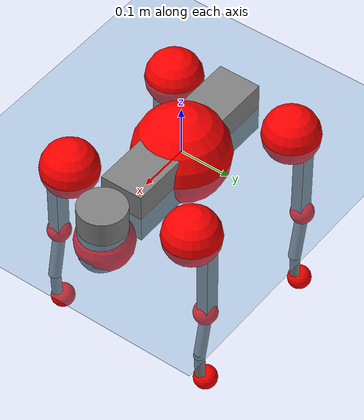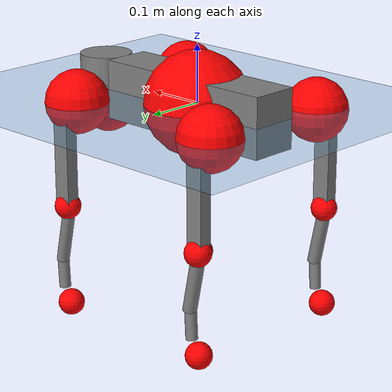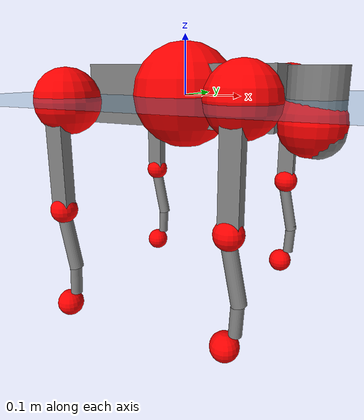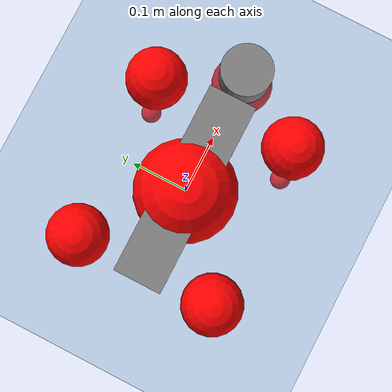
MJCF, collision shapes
<mujoco model="go2">
  <compiler angle="radian" assetdir="assets" balanceinertia="true" inertiafromgeom="false"/>

  <option timestep="0.005" density="1.2" viscosity="2e-05"/>

  <size nkey="1"/>

  <visual>
    <quality shadowsize="8192"/>
    <map shadowclip="0.5"/>
  </visual>

  <default>
    <default class="/">
      <geom contype="0" conaffinity="0" group="1" solref="-1000 -80"/>
      <site size="0.01 0.005 0.005" group="5"/>
      <general forcelimited="true" biastype="affine" gainprm="20" biasprm="0 -20 -0.5"/>
      <default class="go2">
        <joint armature="0.01" damping="0.01" frictionloss="0.2"/>
        <geom condim="1" margin="0.001"/>
        <default class="visual">
          <geom type="mesh" group="2"/>
        </default>
        <default class="collision">
          <geom group="3"/>
          <default class="foot">
            <geom size="0.022 0 0" condim="6" priority="1" friction="0.8 0.02 0.01" solimp="0.015 1 0.022"/>
          </default>
        </default>
        <default class="reward_collision_sphere">
          <geom group="5" rgba="1 0 0 1"/>
        </default>
      </default>
    </default>
  </default>

  <asset>
    <texture type="skybox" colorspace="auto" name="//unnamed_texture_0" builtin="gradient" rgb1="0.95 0.95 0.95" rgb2="0.95 0.95 0.95" width="100" height="600"/>
    <texture type="2d" colorspace="auto" name="texplane" builtin="checker" rgb1="0.345 0.575 0.748" rgb2="0.345 0.575 0.748" markrgb="1 1 1" width="512" height="512"/>
    <material name="MatPlane" class="/" texture="texplane" texuniform="true" texrepeat="2 2" specular="0.9"/>
    <material name="metal" class="/" rgba="0.9 0.95 0.95 1"/>
    <material name="black" class="/" rgba="0 0 0 1"/>
    <material name="white" class="/"/>
    <material name="gray" class="/" rgba="0.671705 0.692426 0.77427 1"/>
    <mesh name="base_0" class="/" file="base_0.obj"/>
    <mesh name="base_1" class="/" file="base_1.obj"/>
    <mesh name="base_2" class="/" file="base_2.obj"/>
    <mesh name="base_3" class="/" file="base_3.obj"/>
    <mesh name="base_4" class="/" file="base_4.obj"/>
    <mesh name="hip_0" class="/" file="hip_0.obj"/>
    <mesh name="hip_1" class="/" file="hip_1.obj"/>
    <mesh name="thigh_0" class="/" file="thigh_0.obj"/>
    <mesh name="thigh_1" class="/" file="thigh_1.obj"/>
    <mesh name="thigh_mirror_0" class="/" file="thigh_mirror_0.obj"/>
    <mesh name="thigh_mirror_1" class="/" file="thigh_mirror_1.obj"/>
    <mesh name="calf_0" class="/" file="calf_0.obj"/>
    <mesh name="calf_1" class="/" file="calf_1.obj"/>
    <mesh name="calf_mirror_0" class="/" file="calf_mirror_0.obj"/>
    <mesh name="calf_mirror_1" class="/" file="calf_mirror_1.obj"/>
    <mesh name="foot" class="/" file="foot.obj"/>
  </asset>

  <worldbody>
    <geom name="floor" class="/" size="100 100 0.125" type="plane" group="0" material="MatPlane"/>
    <light name="toplight_shadow" class="/" pos="0 0 5" dir="0.0990148 0.0990148 -0.990148" type="directional" ambient="0.04 0.04 0.04" diffuse="0.55 0.55 0.55" specular="0.12 0.12 0.12"/>
    <light name="toplight_fill" class="/" pos="0 0 5" dir="0.0990148 0.0990148 -0.990148" type="directional" castshadow="false" ambient="0.04 0.04 0.04" diffuse="0.3 0.3 0.3" specular="0.08 0.08 0.08"/>
    <body name="trunk" childclass="go2" pos="-0.000408182 0.000360783 -0.000442899" quat="1 -0.000242664 0.000272991 -0.000392783">
      <inertial pos="0.0155458 0.0017425 -0.00432745" quat="-0.00483823 0.715424 0.00212845 0.69867" mass="4.87915" diaginertia="0.0295315 0.160207 0.0090325"/>
      <joint name="//unnamed_joint_0" type="free" armature="0" damping="0" frictionloss="0"/>
      <geom name="//unnamed_geom_1" class="visual" material="black" mesh="base_0"/>
      <geom name="//unnamed_geom_2" class="visual" material="black" mesh="base_1"/>
      <geom name="//unnamed_geom_3" class="visual" material="black" mesh="base_2"/>
      <geom name="//unnamed_geom_4" class="visual" material="white" mesh="base_3"/>
      <geom name="//unnamed_geom_5" class="visual" material="gray" mesh="base_4"/>
      <geom name="trunk_1" class="collision" size="0.16918 0.0420477 0.0512668" type="box"/>
      <geom name="trunk_2" class="collision" size="0.0449708 0.0404738" pos="0.220003 0 0.0082139" type="cylinder"/>
      <geom name="trunk_3" class="collision" size="0.0422726" pos="0.226179 0 -0.0492834"/>
      <geom name="//unnamed_geom_9" class="reward_collision_sphere" size="0.0899417"/>
      <geom name="//unnamed_geom_10" class="reward_collision_sphere" size="0.053965" pos="0.216143 0 -0.0369626"/>
      <site name="imu" pos="-0.0171988 0.0141147 0.0234657" size="0.00899417"/>
      <camera name="track" pos="0 -2.20984 0" quat="0.707107 0.707107 0 0" mode="trackcom"/>
      <camera name="ego_camera" pos="0.240845 0 0.0369626" quat="-0.5 -0.5 0.5 0.5"/>
      <body name="FL_hip" pos="0.147874 0.0551349 0.00128029" quat="1 5.42864e-05 0.00043076 -0.00011447">
        <inertial pos="-0.00562824 0.00156154 4.99365e-05" quat="0.496062 0.501835 0.505058 0.496992" mass="0.476529" diaginertia="0.000240969 0.000927243 0.00017301"/>
        <joint name="FL_hip_joint" pos="0 0 0" axis="1 -1.30347e-05 0.000650022" range="-1.05668 1.10595" armature="0.00907425" damping="0" frictionloss="0.20532"/>
        <geom name="//unnamed_geom_11" class="visual" material="metal" mesh="hip_0"/>
        <geom name="//unnamed_geom_12" class="visual" material="gray" mesh="hip_1"/>
        <geom name="//unnamed_geom_13" class="collision" size="0.0413732 0.0179883" pos="0 0.0883936 0" quat="0.707107 0.707107 0 0" type="cylinder"/>
        <geom name="//unnamed_geom_14" class="reward_collision_sphere" size="0.053965" pos="0 0.0773444 0"/>
        <body name="FL_thigh" pos="-0.00257742 0.108286 0.000158445" quat="1 0.000247458 -1.44751e-05 4.88673e-05">
          <inertial pos="-0.00297554 -0.0247237 -0.0256935" quat="0.828379 0.0797761 -0.027898 0.553756" mass="0.831171" diaginertia="0.00161055 0.00940296 0.000313196"/>
          <joint name="FL_thigh_joint" pos="0 0 0" axis="0.00974737 0.999949 0.00252961" stiffness="0.00264592" range="-1.62451 3.50183" armature="0.00799187" damping="0.0184268" frictionloss="0.180873"/>
          <geom name="//unnamed_geom_15" class="visual" material="metal" mesh="thigh_0"/>
          <geom name="//unnamed_geom_16" class="visual" material="gray" mesh="thigh_1"/>
          <geom name="//unnamed_geom_17" class="collision" size="0.0957879 0.0110179 0.0152901" pos="0 0 -0.087478" quat="0.707107 0 0.707107 0" type="box"/>
          <body name="FL_calf" pos="0.0012099 -0.00238594 -0.175978" quat="1 -9.16255e-05 0.000125779 -9.54949e-05">
            <inertial pos="0.00521627 -0.00159122 -0.114926" quat="0.712806 -0.00244781 -0.00482962 0.70134" mass="0.177794" diaginertia="0.000406775 0.00241455 2.00182e-05"/>
            <joint name="FL_calf_joint" pos="0 0 0" axis="-0.00518828 0.999898 -0.0133096" range="-2.71814 -0.779618" armature="0.00844597" damping="0" frictionloss="0.181581"/>
            <geom name="//unnamed_geom_18" class="visual" material="gray" mesh="calf_0"/>
            <geom name="//unnamed_geom_19" class="visual" material="black" mesh="calf_1"/>
            <geom name="FL_calf0" class="collision" size="0.010793 0.053965" pos="0.00617552 0 -0.0492834" quat="0.994493 0 -0.104807 0" type="cylinder"/>
            <geom name="//unnamed_geom_21" class="collision" size="0.00989359 0.0292311" pos="0.0154388 0 -0.121566" quat="0.999688 0 0.0249974 0" type="cylinder"/>
            <geom name="//unnamed_geom_22" class="visual" pos="0 0 -0.174956" quat="1 0 0 0" material="black" mesh="foot"/>
            <geom name="FL_foot" class="foot" size="0.0155898" pos="-0.00154388 0 -0.174956"/>
            <geom name="//unnamed_geom_24" class="reward_collision_sphere" size="0.0224854"/>
            <geom name="//unnamed_geom_25" class="reward_collision_sphere" size="0.0224854" pos="-0.00154388 0 -0.174956"/>
            <site name="FL_foot" class="foot" pos="-0.00154388 0 -0.174956" size="0.00899417"/>
          </body>
        </body>
      </body>
      <body name="FR_hip" pos="0.148021 -0.0505239 0.00331129" quat="1 -2.81908e-05 3.90266e-05 9.7212e-05">
        <inertial pos="-0.00603255 -0.00256347 -0.00117576" quat="0.49903 0.505538 0.499579 0.495803" mass="0.483624" diaginertia="0.000237602 0.000965724 0.000174815"/>
        <joint name="FR_hip_joint" pos="0 0 0" axis="0.999903 0.0134401 0.00357729" range="-1.06108 0.992291" armature="0.00952888" damping="0" frictionloss="0.204624"/>
        <geom name="//unnamed_geom_26" class="visual" pos="0 2.47e-09 1.05943e-07" quat="4.63268e-05 1 0 0" material="metal" mesh="hip_0"/>
        <geom name="//unnamed_geom_27" class="visual" pos="0 4.00416e-09 -2.62038e-07" quat="4.63268e-05 1 0 0" material="gray" mesh="hip_1"/>
        <geom name="//unnamed_geom_28" class="collision" size="0.0413732 0.0179883" pos="0 -0.0883936 0" quat="0.707107 0.707107 0 0" type="cylinder"/>
        <geom name="//unnamed_geom_29" class="reward_collision_sphere" size="0.053965" pos="0 -0.0773444 0"/>
        <body name="FR_thigh" pos="-0.000285935 -0.10837 -0.0025583" quat="0.999999 -0.000647469 0.000151359 -0.00115284">
          <inertial pos="-0.00490153 0.0238516 -0.0292209" quat="0.558043 -0.0199235 0.0823508 0.825476" mass="0.862555" diaginertia="0.00161181 0.0093683 0.000339372"/>
          <joint name="FR_thigh_joint" pos="0 0 0" axis="0.000513249 -1 0.000766413" stiffness="0.00808738" range="-3.48623 1.51272" armature="0.00770023" damping="0.015675" frictionloss="0.160083"/>
          <geom name="//unnamed_geom_30" class="visual" material="metal" mesh="thigh_mirror_0"/>
          <geom name="//unnamed_geom_31" class="visual" material="gray" mesh="thigh_mirror_1"/>
          <geom name="//unnamed_geom_32" class="collision" size="0.0957879 0.0110179 0.0152901" pos="0 0 -0.087478" quat="0.707107 0 0.707107 0" type="box"/>
          <body name="FR_calf" pos="-0.00142756 -0.00140225 -0.174502" quat="1 0.000219331 -1.38201e-05 -0.000280239">
            <inertial pos="0.00367537 -0.000512149 -0.114399" quat="0.703586 -0.00462802 0.00150587 0.710593" mass="0.17284" diaginertia="0.000407451 0.00242202 1.88942e-05"/>
            <joint name="FR_calf_joint" pos="0 0 0" axis="0.00328705 -0.999992 0.002058" range="0.849349 2.73411" armature="0.0087601" damping="0" frictionloss="0.15498"/>
            <geom name="//unnamed_geom_33" class="visual" material="gray" mesh="calf_mirror_0"/>
            <geom name="//unnamed_geom_34" class="visual" material="black" mesh="calf_mirror_1"/>
            <geom name="FR_calf0" class="collision" size="0.0116924 0.053965" pos="0.0077194 0 -0.0492834" quat="0.995004 0 -0.0998334 0" type="cylinder"/>
            <geom name="//unnamed_geom_36" class="collision" size="0.00989359 0.0292311" pos="0.0154388 0 -0.121566" quat="0.999688 0 0.0249974 0" type="cylinder"/>
            <geom name="//unnamed_geom_37" class="visual" pos="0 0 -0.174956" quat="1 0 0 0" material="black" mesh="foot"/>
            <geom name="FR_foot" class="foot" size="0.020579" pos="-0.00154388 0 -0.174956"/>
            <geom name="//unnamed_geom_39" class="reward_collision_sphere" size="0.0224854"/>
            <geom name="//unnamed_geom_40" class="reward_collision_sphere" size="0.0224854" pos="-0.00154388 0 -0.174956"/>
            <site name="FR_foot" class="foot" pos="-0.00154388 0 -0.174956" size="0.00899417"/>
          </body>
        </body>
      </body>
      <body name="RL_hip" pos="-0.149431 0.0489616 -0.000261798" quat="0.999999 -0.000458735 -0.000611405 -0.00111281">
        <inertial pos="0.00238893 0.00084248 -0.000398813" quat="0.510398 0.497803 0.487162 0.50434" mass="0.479683" diaginertia="0.000225716 0.000976102 0.000168113"/>
        <joint name="RL_hip_joint" pos="0 0 0" axis="-0.999996 -0.00198656 -0.00205071" range="-1.08091 1.07031" armature="0.00981773" damping="0.0179505" frictionloss="0.175318"/>
        <geom name="//unnamed_geom_41" class="visual" pos="4.30784e-10 0 8.44435e-08" quat="4.63268e-05 0 1 0" material="metal" mesh="hip_0"/>
        <geom name="//unnamed_geom_42" class="visual" pos="6.98352e-10 0 7.48894e-08" quat="4.63268e-05 0 1 0" material="gray" mesh="hip_1"/>
        <geom name="//unnamed_geom_43" class="collision" size="0.0413732 0.0179883" pos="0 0.0883936 0" quat="0.707107 0.707107 0 0" type="cylinder"/>
        <geom name="//unnamed_geom_44" class="reward_collision_sphere" size="0.053965" pos="0 0.0773444 0"/>
        <body name="RL_thigh" pos="-0.000915518 0.10408 -0.00227489" quat="0.999999 -0.000934206 0.000588171 0.000643965">
          <inertial pos="-0.00291388 -0.0269434 -0.0270353" quat="0.829226 0.0849736 -0.0196057 0.552068" mass="0.844514" diaginertia="0.00164399 0.0095528 0.000337693"/>
          <joint name="RL_thigh_joint" pos="0 0 0" axis="0.000910183 1 2.00007e-05" stiffness="0.0140879" range="-0.577466 4.52273" armature="0.00860789" damping="0.0158474" frictionloss="0.204115"/>
          <geom name="//unnamed_geom_45" class="visual" material="metal" mesh="thigh_0"/>
          <geom name="//unnamed_geom_46" class="visual" material="gray" mesh="thigh_1"/>
          <geom name="//unnamed_geom_47" class="collision" size="0.0957879 0.0110179 0.0152901" pos="0 0 -0.087478" quat="0.707107 0 0.707107 0" type="box"/>
          <body name="RL_calf" pos="-0.00104547 0.00271521 -0.176827" quat="0.999999 0.00103512 0.000126996 0.000238701">
            <inertial pos="0.00421048 0.00198259 -0.116123" quat="0.711636 0.00730513 -0.00145462 0.702509" mass="0.167827" diaginertia="0.000396788 0.00225149 1.98553e-05"/>
            <joint name="RL_calf_joint" pos="0 0 0" axis="-0.00979409 0.999926 -0.00717251" range="-2.7217 -0.829641" armature="0.0095531" damping="0.0073129" frictionloss="0.176131"/>
            <geom name="//unnamed_geom_48" class="visual" material="gray" mesh="calf_0"/>
            <geom name="//unnamed_geom_49" class="visual" material="black" mesh="calf_1"/>
            <geom name="RL_calf0" class="collision" size="0.0116924 0.053965" pos="0.0077194 0 -0.0492834" quat="0.995004 0 -0.0998334 0" type="cylinder"/>
            <geom name="//unnamed_geom_51" class="collision" size="0.00989359 0.0292311" pos="0.0154388 0 -0.121566" quat="0.999688 0 0.0249974 0" type="cylinder"/>
            <geom name="//unnamed_geom_52" class="visual" pos="0 0 -0.174956" quat="1 0 0 0" material="black" mesh="foot"/>
            <geom name="RL_foot" class="foot" size="0.0207626" pos="-0.00154388 0 -0.174956"/>
            <geom name="//unnamed_geom_54" class="reward_collision_sphere" size="0.0224854"/>
            <geom name="//unnamed_geom_55" class="reward_collision_sphere" size="0.0224854" pos="-0.00154388 0 -0.174956"/>
            <site name="RL_foot" class="foot" pos="-0.00154388 0 -0.174956" size="0.00899417"/>
          </body>
        </body>
      </body>
      <body name="RR_hip" pos="-0.149148 -0.050465 -0.00738321" quat="1 3.44404e-05 -1.22833e-05 1.82364e-05">
        <inertial pos="0.0019014 -0.00474153 0.000536196" quat="0.50419 0.496295 0.494787 0.504649" mass="0.498465" diaginertia="0.00024636 0.000979163 0.000186785"/>
        <joint name="RR_hip_joint" pos="0 0 0" axis="-1 0.000573543 -0.000540095" range="-1.09975 1.04644" armature="0.00904852" damping="0.00156685" frictionloss="0.178695"/>
        <geom name="//unnamed_geom_56" class="visual" pos="-4.19256e-10 2.47e-09 -2.14998e-08" quat="2.14617e-09 4.63268e-05 4.63268e-05 -1" material="metal" mesh="hip_0"/>
        <geom name="//unnamed_geom_57" class="visual" pos="-7.26865e-10 4.00416e-09 3.36928e-07" quat="2.14617e-09 4.63268e-05 4.63268e-05 -1" material="gray" mesh="hip_1"/>
        <geom name="//unnamed_geom_58" class="collision" size="0.0413732 0.0179883" pos="0 -0.0883936 0" quat="0.707107 0.707107 0 0" type="cylinder"/>
        <geom name="//unnamed_geom_59" class="reward_collision_sphere" size="0.053965" pos="0 -0.0773444 0"/>
        <body name="RR_thigh" pos="-0.000809927 -0.103756 -0.00211819" quat="1 -6.09781e-05 -0.000312597 0.000113634">
          <inertial pos="-0.00103078 0.0219296 -0.0262072" quat="0.561794 -0.0208121 0.0784105 0.82329" mass="0.818122" diaginertia="0.00162769 0.00940038 0.000325204"/>
          <joint name="RR_thigh_joint" pos="0 0 0" axis="0.0204111 -0.999789 -0.00231157" range="-4.53116 0.477117" armature="0.00898563" damping="0" frictionloss="0.167068"/>
          <geom name="//unnamed_geom_60" class="visual" material="metal" mesh="thigh_mirror_0"/>
          <geom name="//unnamed_geom_61" class="visual" material="gray" mesh="thigh_mirror_1"/>
          <geom name="//unnamed_geom_62" class="collision" size="0.0957879 0.0110179 0.0152901" pos="0 0 -0.087478" quat="0.707107 0 0.707107 0" type="box"/>
          <body name="RR_calf" pos="-0.00175499 0.00165457 -0.17629" quat="1 1.53008e-05 0.000158678 -6.32544e-06">
            <inertial pos="0.00644675 0.000214465 -0.115822" quat="0.699913 -0.00262366 0.00461306 0.714208" mass="0.18049" diaginertia="0.000422201 0.00258254 2.02987e-05"/>
            <joint name="RR_calf_joint" pos="0 0 0" axis="-0.0018199 -0.999998 0.000588459" range="0.868749 2.69985" armature="0.00909536" damping="0.00784802" frictionloss="0.16572"/>
            <geom name="//unnamed_geom_63" class="visual" material="gray" mesh="calf_mirror_0"/>
            <geom name="//unnamed_geom_64" class="visual" material="black" mesh="calf_mirror_1"/>
            <geom name="RR_calf0" class="collision" size="0.0116924 0.053965" pos="0.0077194 0 -0.0492834" quat="0.995004 0 -0.0998334 0" type="cylinder"/>
            <geom name="//unnamed_geom_66" class="collision" size="0.00989359 0.0292311" pos="0.0154388 0 -0.121566" quat="0.999688 0 0.0249974 0" type="cylinder"/>
            <geom name="//unnamed_geom_67" class="visual" pos="0 0 -0.174956" quat="1 0 0 0" material="black" mesh="foot"/>
            <geom name="RR_foot" class="foot" size="0.0209315" pos="-0.00154388 0 -0.174956"/>
            <geom name="//unnamed_geom_69" class="reward_collision_sphere" size="0.0224854"/>
            <geom name="//unnamed_geom_70" class="reward_collision_sphere" size="0.0224854" pos="-0.00154388 0 -0.174956"/>
            <site name="RR_foot" class="foot" pos="-0.00154388 0 -0.174956" size="0.00899417"/>
          </body>
        </body>
      </body>
    </body>
  </worldbody>

  <contact>
    <pair class="/" geom1="floor" geom2="FL_foot" name="//unnamed_contact_0"/>
    <pair class="/" geom1="floor" geom2="FR_foot" name="//unnamed_contact_1"/>
    <pair class="/" geom1="floor" geom2="RL_foot" name="//unnamed_contact_2"/>
    <pair class="/" geom1="floor" geom2="RR_foot" name="//unnamed_contact_3"/>
  </contact>

  <actuator>
    <general name="FL_hip" class="/" joint="FL_hip_joint" forcerange="-21.9319 21.9319" gainprm="18.4375" biasprm="0 -18.4375 -0.429539"/>
    <general name="FL_thigh" class="/" joint="FL_thigh_joint" forcerange="-21.6502 21.6502" gainprm="18.4375" biasprm="0 -18.4375 -0.429539"/>
    <general name="FL_calf" class="/" joint="FL_calf_joint" forcerange="-45.1778 45.1778" gainprm="18.4375" biasprm="0 -18.4375 -0.429539"/>
    <general name="FR_hip" class="/" joint="FR_hip_joint" forcerange="-21.1394 21.1394" gainprm="18.4375" biasprm="0 -18.4375 -0.429539"/>
    <general name="FR_thigh" class="/" joint="FR_thigh_joint" forcerange="-23.5349 23.5349" gainprm="18.4375" biasprm="0 -18.4375 -0.429539"/>
    <general name="FR_calf" class="/" joint="FR_calf_joint" forcerange="-40.1933 40.1933" gainprm="18.4375" biasprm="0 -18.4375 -0.429539"/>
    <general name="RL_hip" class="/" joint="RL_hip_joint" forcerange="-21.505 21.505" gainprm="18.4375" biasprm="0 -18.4375 -0.429539"/>
    <general name="RL_thigh" class="/" joint="RL_thigh_joint" forcerange="-20.8978 20.8978" gainprm="18.4375" biasprm="0 -18.4375 -0.429539"/>
    <general name="RL_calf" class="/" joint="RL_calf_joint" forcerange="-43.1404 43.1404" gainprm="18.4375" biasprm="0 -18.4375 -0.429539"/>
    <general name="RR_hip" class="/" joint="RR_hip_joint" forcerange="-21.0821 21.0821" gainprm="18.4375" biasprm="0 -18.4375 -0.429539"/>
    <general name="RR_thigh" class="/" joint="RR_thigh_joint" forcerange="-19.5446 19.5446" gainprm="18.4375" biasprm="0 -18.4375 -0.429539"/>
    <general name="RR_calf" class="/" joint="RR_calf_joint" forcerange="-45.2284 45.2284" gainprm="18.4375" biasprm="0 -18.4375 -0.429539"/>
  </actuator>

  <sensor>
    <gyro site="imu" name="imu_angular_velocity"/>
    <velocimeter site="imu" name="imu_linear_velocity"/>
    <framelinvel objtype="site" objname="FL_foot" name="FL_foot_global_linear_velocity"/>
    <framelinvel objtype="site" objname="FR_foot" name="FR_foot_global_linear_velocity"/>
    <framelinvel objtype="site" objname="RL_foot" name="RL_foot_global_linear_velocity"/>
    <framelinvel objtype="site" objname="RR_foot" name="RR_foot_global_linear_velocity"/>
  </sensor>

  <keyframe>
    <key name="home" qpos="0 0 0.325 1 0 0 0 0.1 0.8 -1.5 -0.1 -0.8 1.5 -0.1 0.8 -1.5 0.1 -0.8 1.5"/>
  </keyframe>
</mujoco>
